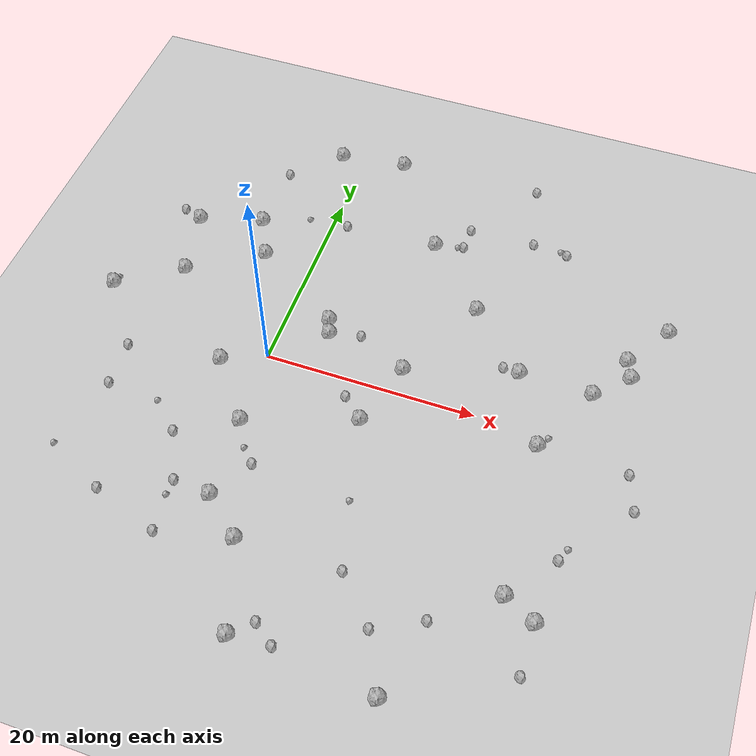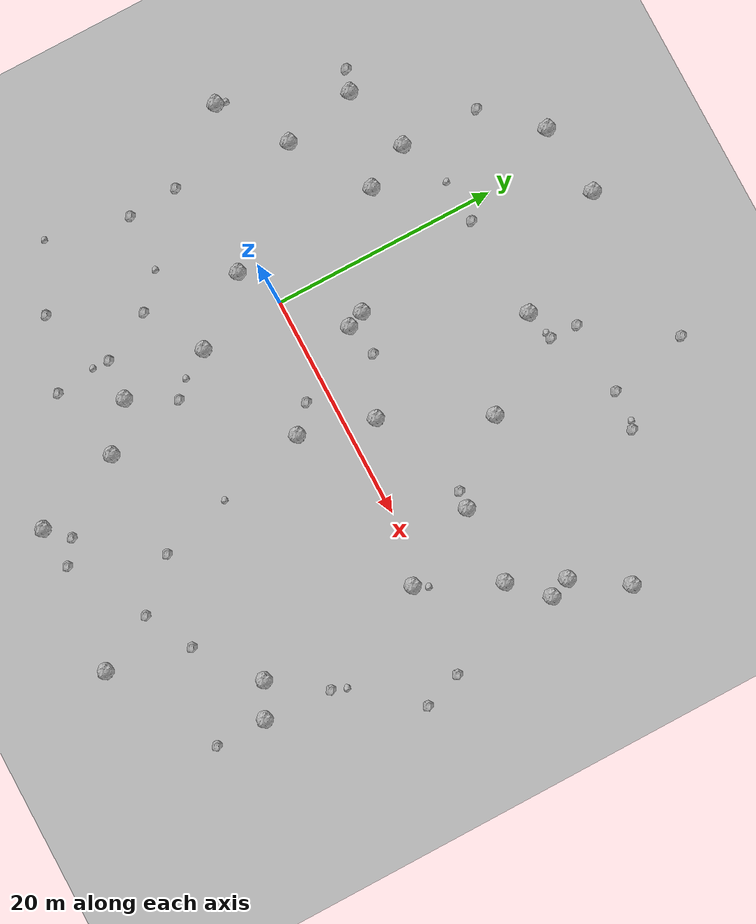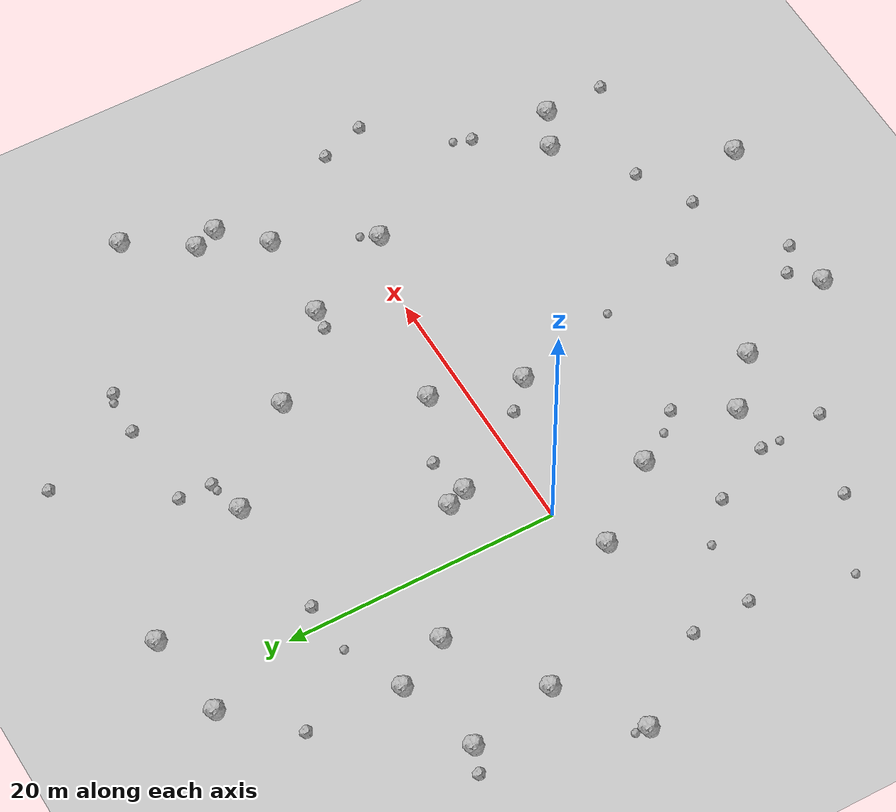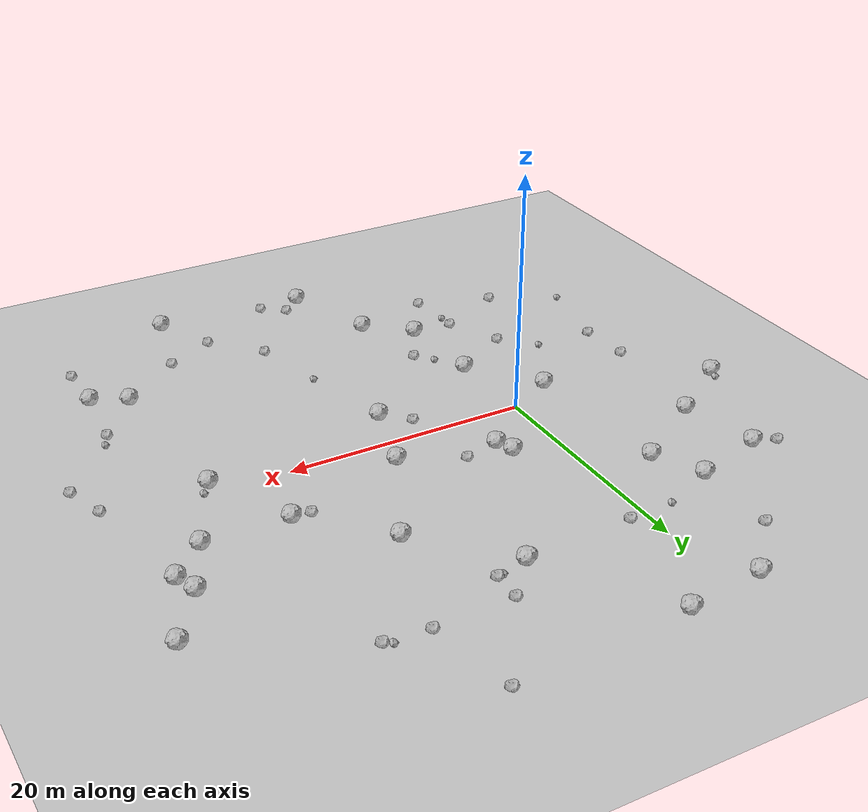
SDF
<sdf version="1.6">
 <world name="default">
  <include><uri>model://custom_ground</uri></include>
  <include><uri>model://sun</uri></include>
  <model name="rock1_0_0">
   <include><uri>model://rock1</uri><pose>3.9710430038716744 5.708556356414533 0.5 0 0 0</pose></include>
  </model>
  <model name="rock1_0_1">
   <include><uri>model://rock1</uri><pose>16.853954700211887 11.476560595513298 0.5 0 0 0</pose></include>
  </model>
  <model name="rock1_0_2">
   <include><uri>model://rock1</uri><pose>4.140596245764293 27.648088891068497 0.5 0 0 0</pose></include>
  </model>
  <model name="rock1_0_3">
   <include><uri>model://rock1</uri><pose>-6.863370384733212 15.37672874043507 0.5 0 0 0</pose></include>
  </model>
  <model name="rock1_0_4">
   <include><uri>model://rock1</uri><pose>34.6401848849878 14.838353331355755 0.5 0 0 0</pose></include>
  </model>
  <model name="rock1_0_5">
   <include><uri>model://rock1</uri><pose>4.551018157640673 4.199312477890359 0.5 0 0 0</pose></include>
  </model>
  <model name="rock1_0_6">
   <include><uri>model://rock1</uri><pose>12.39956541166297 2.5531214280379118 0.5 0 0 0</pose></include>
  </model>
  <model name="rock1_0_7">
   <include><uri>model://rock1</uri><pose>4.665444129446396 -18.346587485605347 0.5 0 0 0</pose></include>
  </model>
  <model name="rock1_0_8">
   <include><uri>model://rock1</uri><pose>31.672646030934054 10.32085906364636 0.5 0 0 0</pose></include>
  </model>
  <model name="rock1_0_9">
   <include><uri>model://rock1</uri><pose>-2.3947381075441463 26.795589316990103 0.5 0 0 0</pose></include>
  </model>
  <model name="rock1_0_10">
   <include><uri>model://rock1</uri><pose>-11.617834893001024 7.029788933469938 0.5 0 0 0</pose></include>
  </model>
  <model name="rock1_0_11">
   <include><uri>model://rock1</uri><pose>-3.8834087075911796 -1.905886329202989 0.5 0 0 0</pose></include>
  </model>
  <model name="rock1_0_12">
   <include><uri>model://rock1</uri><pose>20.339408433734377 -27.08605104297686 0.5 0 0 0</pose></include>
  </model>
  <model name="rock1_0_13">
   <include><uri>model://rock1</uri><pose>1.050543605518584 -15.246045461044428 0.5 0 0 0</pose></include>
  </model>
  <model name="rock1_0_14">
   <include><uri>model://rock1</uri><pose>7.458846895543655 -26.254186438806133 0.5 0 0 0</pose></include>
  </model>
  <model name="rock1_0_15">
   <include><uri>model://rock1</uri><pose>0.5010604280630808 -7.483004618502601 0.5 0 0 0</pose></include>
  </model>
  <model name="rock1_0_16">
   <include><uri>model://rock1</uri><pose>30.062773463483836 -17.288760991761293 0.5 0 0 0</pose></include>
  </model>
  <model name="rock1_0_17">
   <include><uri>model://rock1</uri><pose>29.475846051713866 5.609228815858401 0.5 0 0 0</pose></include>
  </model>
  <model name="rock1_0_18">
   <include><uri>model://rock1</uri><pose>32.36385191256863 8.500378611252309 0.5 0 0 0</pose></include>
  </model>
  <model name="rock1_0_19">
   <include><uri>model://rock1</uri><pose>-17.400236961657754 3.080138031525962 0.5 0 0 0</pose></include>
  </model>
  <model name="rock1_0_20">
   <include><uri>model://rock1</uri><pose>-12.980300998495157 13.574510438774517 0.5 0 0 0</pose></include>
  </model>
  <model name="rock1_0_21">
   <include><uri>model://rock1</uri><pose>10.630058274808501 18.019633323717223 0.5 0 0 0</pose></include>
  </model>
  <model name="rock1_0_22">
   <include><uri>model://rock1</uri><pose>26.127659771703 -1.3022472675640948 0.5 0 0 0</pose></include>
  </model>
  <model name="rock1_0_23">
   <include><uri>model://rock1</uri><pose>-4.9110949767763135 11.382870153896661 0.5 0 0 0</pose></include>
  </model>
  <model name="rock1_0_24">
   <include><uri>model://rock1</uri><pose>10.540440854423842 -3.9090267721535845 0.5 0 0 0</pose></include>
  </model>
  <model name="rock1_0_25">
   <include><uri>model://rock1</uri><pose>27.1817599159195 -15.842789965667468 0.5 0 0 0</pose></include>
  </model>
  <model name="rock1_0_26">
   <include><uri>model://rock1</uri><pose>22.588441810417102 5.716959018102472 0.5 0 0 0</pose></include>
  </model>
  <model name="rock2_0_0">
   <include><uri>model://rock2</uri><pose>14.17177862590539 -18.133046584436627 0.3 0 0 0</pose></include>
  </model>
  <model name="rock2_0_1">
   <include><uri>model://rock2</uri><pose>13.42217944973116 21.14571390845805 0.3 0 0 0</pose></include>
  </model>
  <model name="rock2_0_2">
   <include><uri>model://rock2</uri><pose>-12.416969177669534 -7.702581743335294 0.3 0 0 0</pose></include>
  </model>
  <model name="rock2_0_3">
   <include><uri>model://rock2</uri><pose>8.450667540446663 -1.9514050008015076 0.3 0 0 0</pose></include>
  </model>
  <model name="rock2_0_4">
   <include><uri>model://rock2</uri><pose>7.491199561298071 4.912482335820208 0.3 0 0 0</pose></include>
  </model>
  <model name="rock2_0_5">
   <include><uri>model://rock2</uri><pose>9.223248350062889 -24.505348295275205 0.3 0 0 0</pose></include>
  </model>
  <model name="rock2_0_6">
   <include><uri>model://rock2</uri><pose>30.132064198689577 -21.84516140750618 0.3 0 0 0</pose></include>
  </model>
  <model name="rock2_0_7">
   <include><uri>model://rock2</uri><pose>-14.923493824025783 14.268268617060649 0.3 0 0 0</pose></include>
  </model>
  <model name="rock2_0_8">
   <include><uri>model://rock2</uri><pose>18.33808117084419 28.447148316543384 0.3 0 0 0</pose></include>
  </model>
  <model name="rock2_0_9">
   <include><uri>model://rock2</uri><pose>11.153759801812939 -25.93612753024732 0.3 0 0 0</pose></include>
  </model>
  <model name="rock2_0_10">
   <include><uri>model://rock2</uri><pose>-8.346750406137453 -17.83372195511092 0.3 0 0 0</pose></include>
  </model>
  <model name="rock2_0_11">
   <include><uri>model://rock2</uri><pose>21.98100304411323 -19.907268991670943 0.3 0 0 0</pose></include>
  </model>
  <model name="rock2_0_12">
   <include><uri>model://rock2</uri><pose>35.473320851581065 -4.864078170385675 0.3 0 0 0</pose></include>
  </model>
  <model name="rock2_0_13">
   <include><uri>model://rock2</uri><pose>13.344942034801221 18.707670051641536 0.3 0 0 0</pose></include>
  </model>
  <model name="rock2_0_14">
   <include><uri>model://rock2</uri><pose>-6.720544227832816 22.396559598043908 0.3 0 0 0</pose></include>
  </model>
  <model name="rock2_0_15">
   <include><uri>model://rock2</uri><pose>23.31315829736814 21.06685442302659 0.3 0 0 0</pose></include>
  </model>
  <model name="rock2_0_16">
   <include><uri>model://rock2</uri><pose>-12.72127784259899 -3.2245156025583874 0.3 0 0 0</pose></include>
  </model>
  <model name="rock2_0_17">
   <include><uri>model://rock2</uri><pose>19.84453679418509 21.38116795033371 0.3 0 0 0</pose></include>
  </model>
  <model name="rock2_0_18">
   <include><uri>model://rock2</uri><pose>34.34625587164329 -1.4907859225286195 0.3 0 0 0</pose></include>
  </model>
  <model name="rock2_0_19">
   <include><uri>model://rock2</uri><pose>-2.0320483852749085 -19.958127814743115 0.3 0 0 0</pose></include>
  </model>
  <model name="rock2_0_20">
   <include><uri>model://rock2</uri><pose>17.84705491074436 -22.076821857598517 0.3 0 0 0</pose></include>
  </model>
  <model name="rock2_0_21">
   <include><uri>model://rock2</uri><pose>30.530383042893952 -11.362448575123722 0.3 0 0 0</pose></include>
  </model>
  <model name="rock2_0_22">
   <include><uri>model://rock2</uri><pose>-4.6670138499545395 -10.467048133621269 0.3 0 0 0</pose></include>
  </model>
  <model name="rock2_0_23">
   <include><uri>model://rock2</uri><pose>3.235107491457555 -11.267621733446092 0.3 0 0 0</pose></include>
  </model>
  <model name="rock2_0_24">
   <include><uri>model://rock2</uri><pose>21.043753553426534 5.858102582804662 0.3 0 0 0</pose></include>
  </model>
  <model name="rock2_0_25">
   <include><uri>model://rock2</uri><pose>1.4763846255794206 17.518639206182996 0.3 0 0 0</pose></include>
  </model>
  <model name="rock2_0_26">
   <include><uri>model://rock2</uri><pose>-2.47174586648773 -14.952047206337431 0.3 0 0 0</pose></include>
  </model>
  <model name="rock3_0_0">
   <include><uri>model://rock3</uri><pose>26.841052948203327 -0.19605645728805499 0.2 0 0 0</pose></include>
  </model>
  <model name="rock3_0_1">
   <include><uri>model://rock3</uri><pose>12.448243242295277 -11.852728842782028 0.2 0 0 0</pose></include>
  </model>
  <model name="rock3_0_2">
   <include><uri>model://rock3</uri><pose>-14.074828372952513 -15.070418107042446 0.2 0 0 0</pose></include>
  </model>
  <model name="rock3_0_3">
   <include><uri>model://rock3</uri><pose>12.777112462095431 18.556736498701042 0.2 0 0 0</pose></include>
  </model>
  <model name="rock3_0_4">
   <include><uri>model://rock3</uri><pose>-17.27517534544655 3.936262496482847 0.2 0 0 0</pose></include>
  </model>
  <model name="rock3_0_5">
   <include><uri>model://rock3</uri><pose>-2.4567649797748246 17.203791498481927 0.2 0 0 0</pose></include>
  </model>
  <model name="rock3_0_6">
   <include><uri>model://rock3</uri><pose>-2.5278049229623214 -16.471382188979035 0.2 0 0 0</pose></include>
  </model>
  <model name="rock3_0_7">
   <include><uri>model://rock3</uri><pose>-7.426001958425708 -7.9821137340854555 0.2 0 0 0</pose></include>
  </model>
  <model name="rock3_0_8">
   <include><uri>model://rock3</uri><pose>1.905804384336804 -9.976099762248005 0.2 0 0 0</pose></include>
  </model>
  <model name="rock3_0_9">
   <include><uri>model://rock3</uri><pose>22.6273192991128 21.33963846714724 0.2 0 0 0</pose></include>
  </model>
  <model name="rock3_0_10">
   <include><uri>model://rock3</uri><pose>31.03053128345841 -10.13774282040994 0.2 0 0 0</pose></include>
  </model>
 </world>
</sdf>
